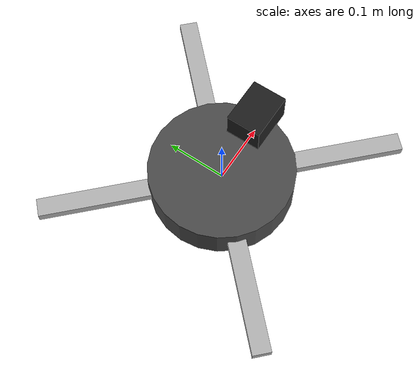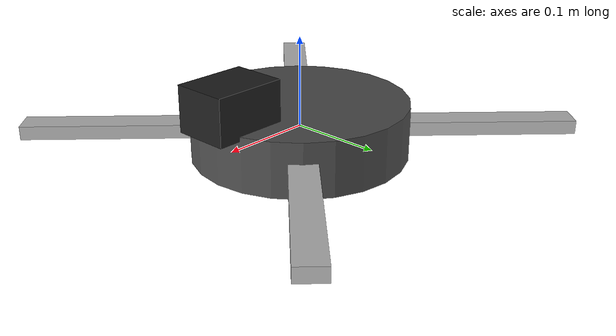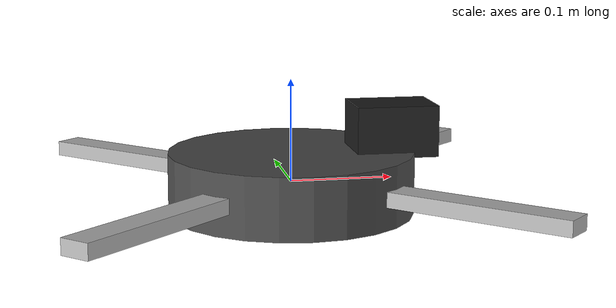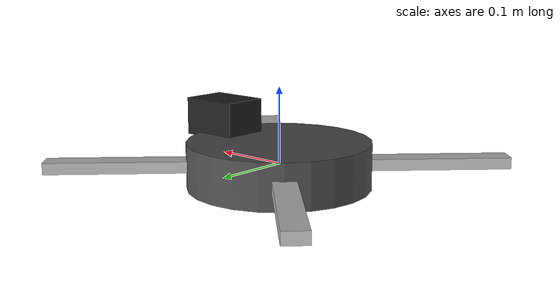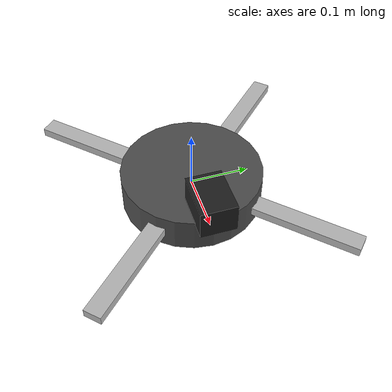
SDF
<?xml version="1.0"?>
<sdf version="1.6">
  <model name="falcon_cam_depth_uav">
    <static>false</static>

    <link name="base_link">
      <gravity>false</gravity>
      <kinematic>true</kinematic>
      <self_collide>false</self_collide>

      <inertial>
        <mass>1.0</mass>
        <inertia>
          <ixx>0.1</ixx>
          <ixy>0.0</ixy>
          <ixz>0.0</ixz>
          <iyy>0.1</iyy>
          <iyz>0.0</iyz>
          <izz>0.1</izz>
        </inertia>
      </inertial>

      <visual name="base_vis">
        <geometry>
          <cylinder>
            <radius>0.12</radius>
            <length>0.06</length>
          </cylinder>
        </geometry>
        <material>
          <script>
            <name>Gazebo/DarkGrey</name>
          </script>
        </material>
      </visual>

      <visual name="arms_vis_1">
        <geometry>
          <box>
            <size>0.6 0.03 0.015</size>
          </box>
        </geometry>
        <pose>0 0 0 0 0 0.785</pose>
      </visual>
      <visual name="arms_vis_2">
        <geometry>
          <box>
            <size>0.6 0.03 0.015</size>
          </box>
        </geometry>
        <pose>0 0 0 0 0 -0.785</pose>
      </visual>

      <visual name="camera_pod">
        <pose>0.10 0 0.05 0 0 0</pose>
        <geometry>
          <box>
            <size>0.08 0.06 0.05</size>
          </box>
        </geometry>
        <material>
          <script>
            <name>Gazebo/Black</name>
          </script>
        </material>
      </visual>

      <sensor name="rgb_camera" type="camera">
        <pose>0.10 0 0.05 0 0 0</pose>
        <always_on>true</always_on>
        <update_rate>15</update_rate>
        <camera>
          <horizontal_fov>1.047</horizontal_fov>
          <image>
            <width>640</width>
            <height>480</height>
            <format>R8G8B8</format>
          </image>
          <clip>
            <near>0.05</near>
            <far>20.0</far>
          </clip>
        </camera>
        <plugin name="gazebo_ros_rgb_camera" filename="libgazebo_ros_camera.so">
          <robotNamespace>/uav_simulator</robotNamespace>
          <cameraName>rgb_camera</cameraName>
          <frameName>camera_rgb_optical_frame</frameName>
          <imageTopicName>image_raw</imageTopicName>
          <cameraInfoTopicName>camera_info</cameraInfoTopicName>
        </plugin>
      </sensor>

      <sensor name="depth_camera" type="depth">
        <pose>0.10 0 0.05 0 0 0</pose>
        <always_on>true</always_on>
        <update_rate>15</update_rate>
        <camera>
          <horizontal_fov>1.047</horizontal_fov>
          <image>
            <width>640</width>
            <height>480</height>
            <format>R8G8B8</format>
          </image>
          <clip>
            <near>0.05</near>
            <far>20.0</far>
          </clip>
        </camera>
        <plugin name="gazebo_ros_depth_camera" filename="libgazebo_ros_depth_camera.so">
          <robotNamespace>/uav_simulator</robotNamespace>
          <cameraName>depth_camera</cameraName>
          <frameName>camera_depth_optical_frame</frameName>
          <imageTopicName>depth_image</imageTopicName>
          <cameraInfoTopicName>depth_camera_info</cameraInfoTopicName>
          <pointCloudTopicName>depth_points</pointCloudTopicName>
        </plugin>
      </sensor>
    </link>
  </model>
</sdf>
